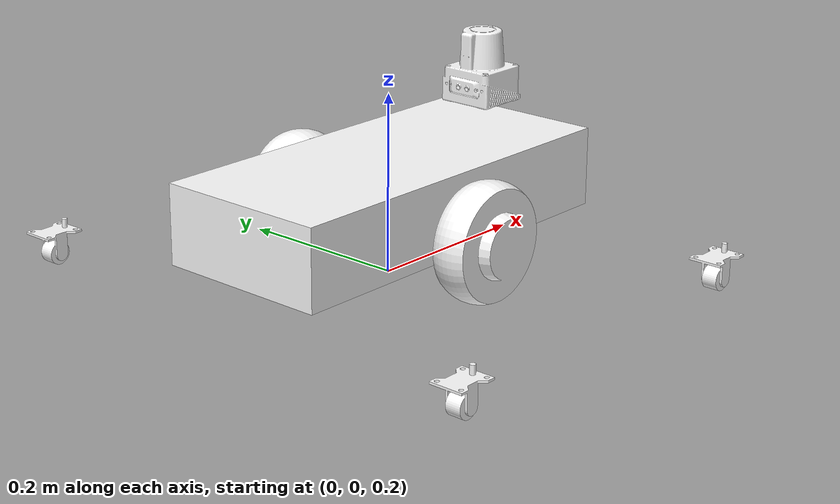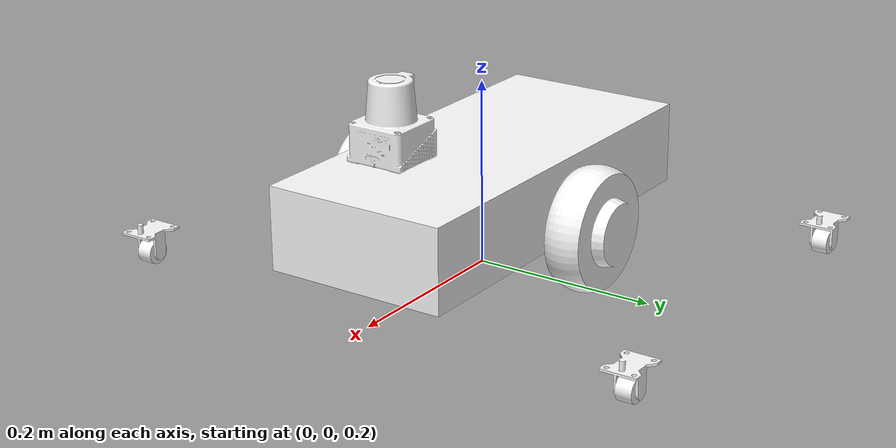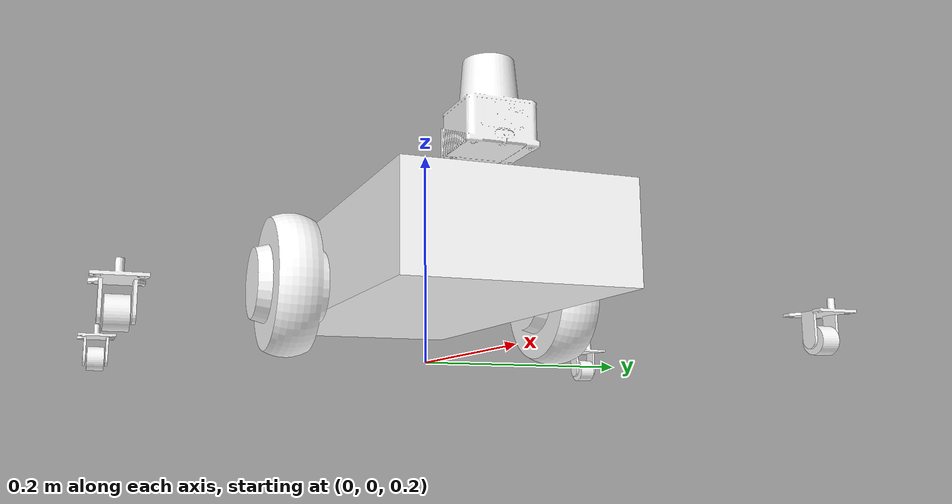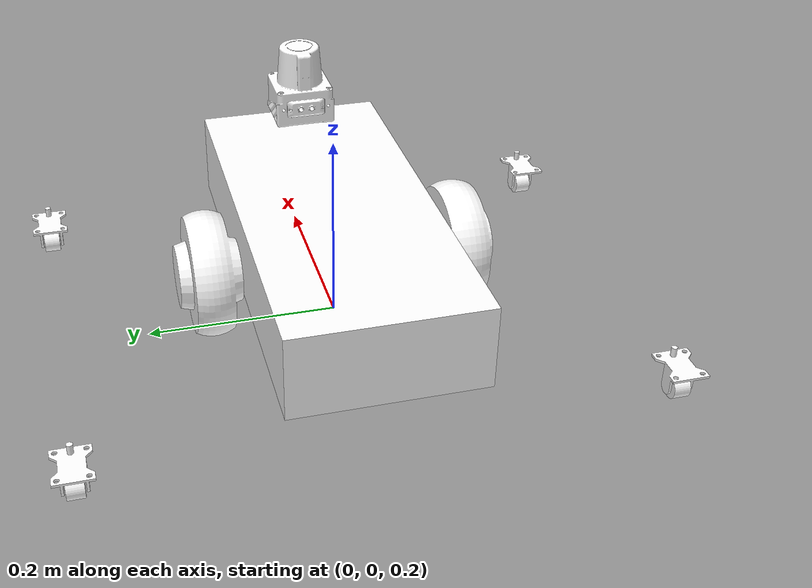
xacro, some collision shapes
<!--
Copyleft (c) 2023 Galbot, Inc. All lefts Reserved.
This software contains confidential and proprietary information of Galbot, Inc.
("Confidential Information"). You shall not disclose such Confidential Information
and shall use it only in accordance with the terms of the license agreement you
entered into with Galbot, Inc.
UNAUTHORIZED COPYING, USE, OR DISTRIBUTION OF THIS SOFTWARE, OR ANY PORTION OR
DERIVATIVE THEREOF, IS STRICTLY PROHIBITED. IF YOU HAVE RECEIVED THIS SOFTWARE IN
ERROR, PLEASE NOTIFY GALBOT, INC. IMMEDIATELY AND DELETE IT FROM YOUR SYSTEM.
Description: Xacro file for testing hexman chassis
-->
<?xml version="1.0"?>
<robot name="test_hexman_chassis" xmlns:xacro="http://ros.org/wiki/xacro">
    <!-- Include-->
    <xacro:include filename="$(find galbot_description)/urdf/chassis/hexman_chassis.xacro" />
    <!-- Properties -->
    <xacro:property name="M_PI" value="3.1415926535897931" />
    <!-- Parent link -->
    <link name="base_link" />
    <xacro:hexman_chassis parent="base_link">
        <origin xyz="0 0 0.2" rpy="0 0 0" />
    </xacro:hexman_chassis>
</robot>

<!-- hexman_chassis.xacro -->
<robot name="hexman_chassis" xmlns:xacro="http://ros.org/wiki/xacro">

  <xacro:macro name="hexman_chassis" params="parent *origin  name:=hexman_chassis">
    <xacro:property name="M_PI" value="3.1415926535897931" />

    <joint name="${name}_joint" type="fixed">
      <xacro:insert_block name="origin" />
      <parent link="${parent}" />
      <child link="${name}_base_link" />
    </joint>

    <link name="${name}_base_link">
      <inertial>
        <origin rpy="0 0 0" xyz="0.0019437 -2.5309E-05 0.094764" />
        <mass value="20.4113" />
        <inertia ixx="0.075816" ixy="9.0316E-09" ixz="1.816E-05" iyy="0.083303" iyz="9.8923E-09"
          izz="0.15228" />
      </inertial>
      <visual>
        <origin rpy="0 0 0" xyz="0 0 0" />
        <geometry>
          <mesh filename="package://galbot_description/meshes/chassis/hexman_chassis_base_link.stl" />
        </geometry>
        <material name="">
          <color rgba="1 1 1 1" />
        </material>
      </visual>
      <collision>
        <origin rpy="0  0 0" xyz="0 0 0.089" />
        <geometry>
          <box size="0.443 0.2 0.089" />
        </geometry>
      </collision>
    </link>

    <link name="${name}_right_wheel_link">
      <inertial>
        <origin rpy="0 0 0" xyz="-2.5255E-19 0 -0.0004362" />
        <mass value="0.5968" />
        <inertia ixx="0.00067338" ixy="1.2511E-08" ixz="-2.7671E-20" iyy="0.00067336"
          iyz="1.2923E-18"
          izz="0.0010757" />
      </inertial>
      <visual>
        <origin rpy="0 0 0" xyz="0 0 0" />
        <geometry>
          <mesh
            filename="package://galbot_description/meshes/chassis/hexman_chassis_right_wheel_link.stl" />
        </geometry>
        <material name="">
          <color rgba="1 1 1 1" />
        </material>
      </visual>
      <collision>
        <origin rpy="0 0 0" xyz="0 0 0" />
        <geometry>
          <cylinder radius="0.0650" length="0.0386" />
        </geometry>
      </collision>
    </link>
    <joint name="${name}_right_wheel_joint" type="continuous">
      <origin rpy="-1.5708 0 3.1416" xyz="0 -0.1341 0.067" />
      <parent link="${name}_base_link" />
      <child link="${name}_right_wheel_link" />
      <axis xyz="0 0 -1" />
      <dynamics damping="100.0" friction="0.0" />
      <transmission name="${name}_right_wheel_joint_trans">
        <type>transmission_interface/SimpleTransmission</type>
        <joint name="${name}_right_wheel_joint">
          <hardwareInterface>VelocityJointInterface</hardwareInterface>
        </joint>
        <actuator name="${name}_right_wheel_joint_motor">
          <mechanicalReduction>1</mechanicalReduction>
        </actuator>
      </transmission>
    </joint>
    <link name="${name}_left_wheel_link">
      <inertial>
        <origin rpy="0 0 0" xyz="-7.3416E-19 0 0.0004362" />
        <mass value="0.5968" />
        <inertia ixx="0.00067338" ixy="-1.2742E-08" ixz="-3.5321E-20" iyy="0.00067336"
          iyz="-3.1288E-18" izz="0.0010757" />
      </inertial>
      <visual>
        <origin rpy="0 0 0" xyz="0 0 0" />
        <geometry>
          <mesh
            filename="package://galbot_description/meshes/chassis/hexman_chassis_left_wheel_link.stl" />
        </geometry>
        <material name="">
          <color rgba="1 1 1 1" />
        </material>
      </visual>
      <collision>
        <origin rpy="0 0 0" xyz="0 0 0" />
        <geometry>
          <cylinder radius="0.0650" length="0.0386" />
        </geometry>
      </collision>
    </link>
    <joint name="${name}_left_wheel_joint" type="continuous">
      <origin rpy="-1.5708 0 3.1416" xyz="0 0.1341 0.067" />
      <parent link="${name}_base_link" />
      <child link="${name}_left_wheel_link" />
      <axis xyz="0 0 1" />
      <dynamics damping="100.0" friction="0.0" />
      <transmission name="${name}_left_wheel_joint_trans">
        <type>transmission_interface/SimpleTransmission</type>
        <joint name="${name}_left_wheel_joint">
          <hardwareInterface>VelocityJointInterface</hardwareInterface>
        </joint>
        <actuator name="${name}_left_wheel_joint_motor">
          <mechanicalReduction>1</mechanicalReduction>
        </actuator>
      </transmission>

    </joint>
    <link name="${name}_caster_swivel_link1">
      <inertial>
        <origin rpy="0 0 0" xyz="0.014272 7.0133E-05 -0.0064185" />
        <mass value="0.0058282" />
        <inertia ixx="1.0504E-06" ixy="-9.9424E-10" ixz="4.8427E-08" iyy="1.2527E-06"
          iyz="2.3797E-10"
          izz="1.3349E-06" />
      </inertial>
      <visual>
        <origin rpy="0 0 0" xyz="0 0 0" />
        <geometry>
          <mesh
            filename="package://galbot_description/meshes/chassis/hexman_chassis_caster_swivel_link1.stl" />
        </geometry>
        <material name="">
          <color rgba="1 1 1 1" />
        </material>
      </visual>
      <collision>
        <origin rpy="0 0 0" xyz="0 0 0" />
        <geometry>
          <mesh
            filename="package://galbot_description/meshes/chassis/hexman_chassis_caster_swivel_link1.stl" />
        </geometry>
      </collision>
    </link>
    <joint name="${name}_caster_swivel_joint1" type="continuous">
      <origin rpy="0 0 3.1416" xyz="0.21 0.29 0.037" />
      <parent link="${name}_base_link" />
      <child link="${name}_caster_swivel_link1" />
      <axis xyz="0 0 -1" />
      <dynamics damping="0.1" friction="0.0" />
    </joint>
    <link name="${name}_caster_wheel_link1">
      <inertial>
        <origin rpy="0 0 0" xyz="0 0 0" />
        <mass value="0.0083449" />
        <inertia ixx="5.2694E-07" ixy="1.2465E-25" ixz="-1.7105E-23" iyy="5.2694E-07"
          iyz="7.4033E-23"
          izz="6.5194E-07" />
      </inertial>
      <visual>
        <origin rpy="0 0 0" xyz="0 0 0" />
        <geometry>
          <mesh
            filename="package://galbot_description/meshes/chassis/hexman_chassis_caster_wheel_link1.stl" />
        </geometry>
        <material name="">
          <color rgba="1 1 1 1" />
        </material>
      </visual>
      <collision>
        <origin rpy="0 0 0" xyz="0 0 0" />
        <geometry>
          <cylinder radius="0.0125" length="0.017" />
        </geometry>
      </collision>
    </link>
    <joint name="${name}_caster_wheel_joint1" type="continuous">
      <origin rpy="-1.5757 1.5708 3.1416" xyz="0.015 7.3709E-05 -0.0245" />
      <parent link="${name}_caster_swivel_link1" />
      <child link="${name}_caster_wheel_link1" />
      <axis xyz="0 0 -1" />
      <dynamics damping="0.1" friction="0.0" />
    </joint>
    <link name="${name}_caster_swivel_link2">
      <inertial>
        <origin rpy="0 0 0" xyz="0.014272 0 -0.0064185" />
        <mass value="0.0058282" />
        <inertia ixx="1.0504E-06" ixy="6.2844E-22" ixz="4.8428E-08" iyy="1.2527E-06"
          iyz="-1.4139E-22"
          izz="1.3349E-06" />
      </inertial>
      <visual>
        <origin rpy="0 0 0" xyz="0 0 0" />
        <geometry>
          <mesh
            filename="package://galbot_description/meshes/chassis/hexman_chassis_caster_swivel_link2.stl" />
        </geometry>
        <material name="">
          <color rgba="1 1 1 1" />
        </material>
      </visual>
      <collision>
        <origin rpy="0 0 0" xyz="0 0 0" />
        <geometry>
          <mesh
            filename="package://galbot_description/meshes/chassis/hexman_chassis_caster_swivel_link2.stl" />
        </geometry>
      </collision>
    </link>
    <joint name="${name}_caster_swivel_joint2" type="continuous">
      <origin rpy="0 0 3.1416" xyz="0.21 -0.29 0.037" />
      <parent link="${name}_base_link" />
      <child link="${name}_caster_swivel_link2" />
      <axis xyz="0 0 -1" />
      <dynamics damping="0.1" friction="0.0" />
    </joint>
    <link name="${name}_caster_wheel_link2">
      <inertial>
        <origin rpy="0 0 0" xyz="-2.7756E-17 0 0" />
        <mass value="0.0083449" />
        <inertia ixx="5.2694E-07" ixy="-1.3642E-37" ixz="4.5487E-23" iyy="5.2694E-07"
          iyz="3.966E-25"
          izz="6.5194E-07" />
      </inertial>
      <visual>
        <origin rpy="0 0 0" xyz="0 0 0" />
        <geometry>
          <mesh
            filename="package://galbot_description/meshes/chassis/hexman_chassis_caster_wheel_link2.stl" />
        </geometry>
        <material name="">
          <color rgba="1 1 1 1" />
        </material>
      </visual>
      <collision>
        <origin rpy="0 0 0" xyz="0 0 0" />
        <geometry>
          <cylinder radius="0.0125" length="0.017" />
        </geometry>
      </collision>
    </link>
    <joint name="${name}_caster_wheel_joint2" type="continuous">
      <origin rpy="-1.5708 0 3.1416" xyz="0.015 0 -0.0245" />
      <parent link="${name}_caster_swivel_link2" />
      <child link="${name}_caster_wheel_link2" />
      <axis xyz="0 0 -1" />
      <dynamics damping="0.1" friction="0.0" />
    </joint>
    <link name="${name}_caster_swivel_link3">
      <inertial>
        <origin rpy="0 0 0" xyz="0.014272 0 -0.0064185" />
        <mass value="0.0058282" />
        <inertia ixx="1.0504E-06" ixy="1.9371E-22" ixz="4.8428E-08" iyy="1.2527E-06"
          iyz="5.7206E-24"
          izz="1.3349E-06" />
      </inertial>
      <visual>
        <origin rpy="0 0 0" xyz="0 0 0" />
        <geometry>
          <mesh
            filename="package://galbot_description/meshes/chassis/hexman_chassis_caster_swivel_link3.stl" />
        </geometry>
        <material name="">
          <color rgba="1 1 1 1" />
        </material>
      </visual>
      <collision>
        <origin rpy="0 0 0" xyz="0 0 0" />
        <geometry>
          <mesh
            filename="package://galbot_description/meshes/chassis/hexman_chassis_caster_swivel_link3.stl" />
        </geometry>
      </collision>
    </link>
    <joint name="${name}_caster_swivel_joint3" type="continuous">
      <origin rpy="0 0 3.1416" xyz="-0.21 -0.29 0.037" />
      <parent link="${name}_base_link" />
      <child link="${name}_caster_swivel_link3" />
      <axis xyz="0 0 -1" />
      <dynamics damping="0.1" friction="0.0" />
    </joint>
    <link name="${name}_caster_wheel_link3">
      <inertial>
        <origin rpy="0 0 0" xyz="-2.7756E-17 -1.7347E-18 0" />
        <mass value="0.0083449" />
        <inertia ixx="5.2695E-07" ixy="9.843E-26" ixz="6.1423E-10" iyy="5.2694E-07" iyz="3.3473E-23"
          izz="6.5194E-07" />
      </inertial>
      <visual>
        <origin rpy="0 0 0" xyz="0 0 0" />
        <geometry>
          <mesh
            filename="package://galbot_description/meshes/chassis/hexman_chassis_caster_wheel_link3.stl" />
        </geometry>
        <material name="">
          <color rgba="1 1 1 1" />
        </material>
      </visual>
      <collision>
        <origin rpy="0 0 0" xyz="0 0 0" />
        <geometry>
          <cylinder radius="0.0125" length="0.017" />
        </geometry>
      </collision>
    </link>
    <joint name="${name}_caster_wheel_joint3" type="continuous">
      <origin rpy="-1.5708 0 3.1416" xyz="0.015 -7.3709E-05 -0.0245" />
      <parent link="${name}_caster_swivel_link3" />
      <child link="${name}_caster_wheel_link3" />
      <axis xyz="0.0049139 0 0.99999" />
      <dynamics damping="0.1" friction="0.0" />
    </joint>
    <link name="${name}_caster_swivel_link4">
      <inertial>
        <origin rpy="0 0 0" xyz="0.014272 7.0133E-05 -0.0064185" />
        <mass value="0.0058282" />
        <inertia ixx="1.0504E-06" ixy="-9.9424E-10" ixz="4.8427E-08" iyy="1.2527E-06"
          iyz="2.3797E-10"
          izz="1.3349E-06" />
      </inertial>
      <visual>
        <origin rpy="0 0 0" xyz="0 0 0" />
        <geometry>
          <mesh
            filename="package://galbot_description/meshes/chassis/hexman_chassis_caster_swivel_link4.stl" />
        </geometry>
        <material name="">
          <color rgba="1 1 1 1" />
        </material>
      </visual>
      <collision>
        <origin rpy="0 0 0" xyz="0 0 0" />
        <geometry>
          <mesh
            filename="package://galbot_description/meshes/chassis/hexman_chassis_caster_swivel_link4.stl" />
        </geometry>
      </collision>
    </link>
    <joint name="${name}_caster_swivel_joint4" type="continuous">
      <origin rpy="0 0 3.1416" xyz="-0.21 0.29 0.037" />
      <parent link="${name}_base_link" />
      <child link="${name}_caster_swivel_link4" />
      <axis xyz="0 0 -1" />
      <dynamics damping="0.1" friction="0.0" />
    </joint>
    <link name="${name}_caster_wheel_link4">
      <inertial>
        <origin rpy="0 0 0" xyz="0 2.7756E-17 -5.5511E-17" />
        <mass value="0.0083449" />
        <inertia ixx="5.2694E-07" ixy="1.2465E-25" ixz="-1.7105E-23" iyy="5.2694E-07"
          iyz="7.4033E-23"
          izz="6.5194E-07" />
      </inertial>
      <visual>
        <origin rpy="0 0 0" xyz="0 0 0" />
        <geometry>
          <mesh
            filename="package://galbot_description/meshes/chassis/hexman_chassis_caster_wheel_link4.stl" />
        </geometry>
        <material name="">
          <color rgba="1 1 1 1" />
        </material>
      </visual>
      <collision>
        <origin rpy="0 0 0" xyz="0 0 0" />
        <geometry>
          <cylinder radius="0.0125" length="0.017" />
        </geometry>
      </collision>
    </link>
    <joint name="${name}_caster_wheel_joint4" type="continuous">
      <origin rpy="-1.5757 1.5708 3.1416" xyz="0.015 7.3709E-05 -0.0245" />
      <parent link="${name}_caster_swivel_link4" />
      <child link="${name}_caster_wheel_link4" />
      <axis xyz="0 0 -1" />
      <dynamics damping="0.1" friction="0.0" />
    </joint>
    <link name="${name}_lidar_link">
      <inertial>
        <origin rpy="0 0 0" xyz="-0.0039812 -3.8899E-05 -0.014046" />
        <mass value="0.061645" />
        <inertia ixx="3.7195E-05" ixy="2.5674E-09" ixz="-1.0731E-07" iyy="3.3749E-05"
          iyz="1.8972E-08"
          izz="5.2832E-05" />
      </inertial>
      <visual>
        <origin rpy="0 0 0" xyz="0 0 0" />
        <geometry>
          <mesh filename="package://galbot_description/meshes/chassis/hexman_chassis_lidar_link.stl" />
        </geometry>
        <material name="">
          <color rgba="1 1 1 1" />
        </material>
      </visual>
      <collision>
        <origin rpy="0 0 0" xyz="0 0 0" />
        <geometry>
          <mesh filename="package://galbot_description/meshes/chassis/hexman_chassis_lidar_link.stl" />
        </geometry>
      </collision>
    </link>
    <joint name="${name}_lidar_joint" type="fixed">
      <origin rpy="0 0 3.1416" xyz="0.15 0 0.2005" />
      <parent link="${name}_base_link" />
      <child link="${name}_lidar_link" />
      <axis xyz="0 0 0" />
    </joint>

    <link name="${name}_lift_fix_point_link"></link>

    <joint name="${name}_lift_fix_point_joint" type="fixed">
      <origin rpy="0 0 0" xyz="-0.1045 0 0.1504" />
      <parent link="${name}_base_link" />
      <child link="${name}_lift_fix_point_link" />
      <axis xyz="0 0 0" />
    </joint>
  </xacro:macro>
</robot>
